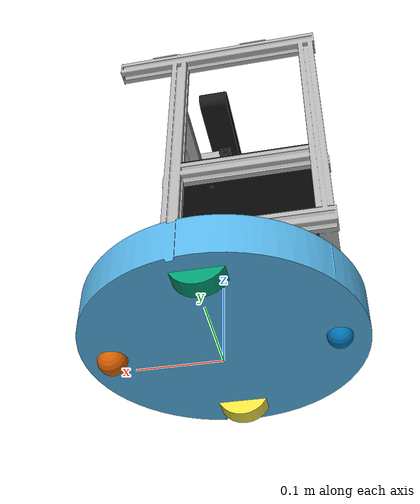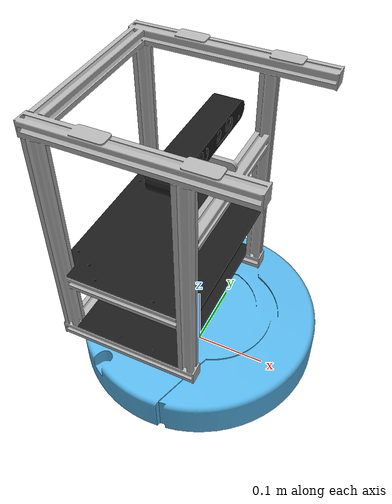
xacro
<?xml version="1.0"?>
<robot name="aicrobo_xi"
  xmlns:xacro="http://ros.org/wiki/xacro">

  <xacro:property name="M_PI" value="3.1415926535897931" />
  <xacro:property name="H_PI" value="1.5707963" />

  <xacro:include filename="$(find aicroboxi_description)/urdf/create_base.urdf.xacro"/>
  <xacro:include filename="$(find aicroboxi_description)/urdf/create_frame.urdf.xacro"/>
  <xacro:include filename="$(find aicroboxi_description)/urdf/xtion_pro.urdf.xacro"/>
</robot>

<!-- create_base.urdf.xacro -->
<robot name="irobot_create"
  xmlns:xacro="http://ros.org/wiki/xacro">

  <link name="base_footprint">
    <visual>
      <origin xyz="0 0 0" rpy="0 0 0" />
      <geometry>
        <box size="0.001 0.001 0.001" />
      </geometry>
      <material name="Green" />
    </visual>

    <collision>
      <origin xyz="0 0 0.017" rpy="0 0 0" />
      <geometry>
        <box size="0.001 0.001 0.001" />
      </geometry>
    </collision>
  </link>

  <joint name="base_footprint_joint" type="fixed">
    <origin xyz="0 0 0.017" rpy="0 0 0" />
    <parent link="base_footprint"/>
    <child link="base_link" />
  </joint>

  <link name="base_link">
    <inertial>
      <mass value="2" />
      <origin xyz="0 0 0.0" />
      <inertia ixx="0.01" ixy="0.0" ixz="0.0"
        iyy="0.01" iyz="0.0" izz="0.5" />
    </inertial>

    <visual>
      <origin xyz=" 0 0 0.0308" rpy="0 0 0" />
      <geometry>
        <mesh filename="package://aicroboxi_description/meshes/create/create_base.dae"/>
      </geometry>
    </visual>

    <collision>
      <origin xyz="0.0 0.0 0.0308" rpy="0 0 0" />
      <geometry>
        <cylinder length="0.0611632" radius="0.016495"/>
      </geometry>
    </collision>
  </link>

  <joint name="base_l_wheel_joint" type="fixed">
    <origin xyz="0 0.13 0.015" rpy="0 0 0"/>
    <parent link="base_link"/>
    <child link="left_wheel_link"/>
    <axis xyz="0 1 0"/>
  </joint>

  <link name="left_wheel_link">
    <inertial>
      <origin xyz="0 0 0"/>
      <mass value="0.01" />
      <inertia ixx="0.001" ixy="0.0" ixz="0.0"
        iyy="0.001" iyz="0.0" izz="0.001" />
    </inertial>

    <visual>
      <origin xyz="0 0 0" rpy="0 ${H_PI} ${H_PI}" />
      <geometry>
        <cylinder radius="0.033" length = "0.023"/>
      </geometry>
    </visual>

    <collision>
      <origin xyz="0 0 0" rpy="0 ${H_PI} ${H_PI}" />
      <geometry>
        <cylinder radius="0.033" length = "0.023"/>
      </geometry>
    </collision>
  </link>

  <joint name="base_r_wheel_joint" type="fixed">
    <origin xyz="0 -0.13 0.015" rpy="0 0 0"/>
    <parent link="base_link"/>
    <child link="right_wheel_link"/>
    <axis xyz="0 1 0"/>
  </joint>

  <link name="right_wheel_link">
    <inertial>
      <origin xyz="0 0 0"/>
      <mass value="0.01" />
      <inertia ixx="0.001" ixy="0.0" ixz="0.0"
        iyy="0.001" iyz="0.0" izz="0.001" />
    </inertial>

    <visual>
      <origin xyz="0 0 0" rpy="0 ${H_PI} ${H_PI}" />
      <geometry>
        <cylinder radius="0.033" length = "0.023"/>
      </geometry>
    </visual>

    <collision>
      <origin xyz="0 0 0" rpy="0 ${H_PI} ${H_PI}" />
      <geometry>
        <cylinder radius="0.033" length = "0.023"/>
      </geometry>
    </collision>
  </link>

  <joint name="rear_castor_joint" type="fixed">
    <origin xyz="-0.13 0 0.0" rpy="0 0 0"/>
    <parent link="base_link"/>
    <child link="rear_wheel_link"/>
    <axis xyz="0 1 0"/>
  </joint>

  <link name="rear_wheel_link">
    <inertial>
      <origin xyz="0 0 0"/>
      <mass value="0.001" />
      <inertia ixx="0.0001" ixy="0.0" ixz="0.0"
        iyy="0.0001" iyz="0.0" izz="0.0001" />
    </inertial>

    <visual>
      <origin xyz="0 0 0" rpy="0 ${H_PI} ${H_PI}"/>
      <geometry>
        <sphere radius="0.015" />
      </geometry>
    </visual>

    <collision>
      <origin xyz="0 0 0" rpy="0 ${H_PI} ${H_PI}" />
      <geometry>
        <sphere radius="0.015" />
      </geometry>
    </collision>
  </link>

  <joint name="front_castor_joint" type="fixed">
    <origin xyz="0.13 0 0.0" rpy="0 0 0"/>
    <parent link="base_link"/>
    <child link="front_wheel_link"/>
    <axis xyz="0 1 0"/>
  </joint>

  <link name="front_wheel_link">
    <inertial>
      <origin xyz="0 0 0" />
      <mass value="0.01" />
      <inertia ixx="0.001" ixy="0.0" ixz="0.0"
        iyy="0.001" iyz="0.0" izz="0.001" />
    </inertial>

    <visual>
      <origin xyz="0 0 0" rpy="0 ${H_PI} ${H_PI}"/>
      <geometry>
        <sphere radius="0.018" />
      </geometry>
    </visual>

    <collision>
      <origin xyz="0 0 0" rpy="0 ${H_PI} ${H_PI}" />
      <geometry>
        <sphere radius="0.018" />
      </geometry>
    </collision>
  </link>
</robot>

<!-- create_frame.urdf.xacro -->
<robot name="aicroboxi_body"
  xmlns:xacro="http://ros.org/wiki/xacro">

  <joint name="base_frame_joint" type="fixed">
    <origin xyz="0 0 0.06116" rpy="0 0 0" />
    <parent link="base_link" />
    <child link="base_frame" />
  </joint>

  <link name="base_frame">
    <visual>
      <origin xyz="0 0 0" rpy="0 0 0" />
      <geometry>
        <mesh filename="package://aicroboxi_description/meshes/create/base_frame.STL" />
      </geometry>
      <material name="al">
        <color rgba="0.7 0.7 0.7 1" />
      </material>
    </visual>

    <collision>
      <origin xyz="0 0 0" rpy="0 0 0" />
      <geometry>
        <mesh filename="package://aicroboxi_description/meshes/create/base_frame.STL" />
      </geometry>
    </collision>
  </link>

  <joint name="plate0_joint" type="fixed">
    <origin xyz="-0.04752 0 0.022" rpy="0 0 0" />
    <parent link="base_frame" />
    <child link="plate0_link" />
  </joint>

  <link name="plate0_link">
    <visual>
      <origin xyz="0 0 0" rpy="${-H_PI} 0 0" />
      <geometry>
        <mesh filename="package://aicroboxi_description/meshes/create/plate0.STL" />
      </geometry>
      <material name="pl">
        <color rgba="0.1 0.1 0.1 1" />
      </material>
    </visual>

    <collision>
      <origin xyz="0 0 0" rpy="${-H_PI} 0 0" />
      <geometry>
        <box size="0.001 0.001 0.001"/>
      </geometry>
    </collision>
  </link>

  <joint name="plate1_joint" type="fixed">
    <origin xyz="-0.04752 0 0.122" rpy="0 0 0" />
    <parent link="base_frame" />
    <child link="plate1_link" />
  </joint>

  <link name="plate1_link">
    <visual>
      <origin xyz="0 0 0" rpy="${-H_PI} 0 0" />
      <geometry>
        <mesh filename="package://aicroboxi_description/meshes/create/plate1.STL" />
      </geometry>
      <material name="pl" />
    </visual>

    <collision>
      <origin xyz="0 0 0" rpy="${-H_PI} 0 0" />
      <geometry>
        <box size="0.001 0.001 0.001"/>
      </geometry>
    </collision>
  </link>

  <joint name="camera_base" type="fixed">
    <origin xyz="0.01616 0 0.27984" rpy="0 0 0"/>
    <parent link="base_frame"/>
    <child link="camera_base" />
  </joint>

  <link name="camera_base">
    <visual>
      <origin xyz="0 0 0" rpy="${H_PI} 0 ${H_PI}" />
      <geometry>
        <mesh filename="package://aicroboxi_description/meshes/xtion_pro_live.STL" />
      </geometry>
      <material name="black">
        <color rgba="0.1 0.1 0.1 1" />
      </material>
    </visual>

    <collision>
      <origin xyz="0 0 0" rpy="${H_PI} 0 ${H_PI}" />
      <geometry>
        <box size="0.001 0.001 0.001"/>
      </geometry>
    </collision>
  </link>

  <joint name="laser_joint" type="fixed">
    <origin xyz="0 0 0.06" rpy="0 0 0"/>
    <parent link="plate0_link"/>
    <child link="laser_link"/>
  </joint>
  <link name="laser_link">
    <inertial>
      <mass value="0.001"/>
      <origin xyz="0 0 0" rpy="0 0 0"/>
      <inertia ixx="0.0001" ixy="0" ixz="0"
                 iyy="0.000001" iyz="0"
                 izz="0.0001"/>
    </inertial>
  </link>
</robot>

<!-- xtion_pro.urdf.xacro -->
<robot name="xtion_pro"
  xmlns:xacro="http://ros.org/wiki/xacro">

  <joint name="camera_link_joint" type="fixed">
    <origin xyz="0 0 0.035" rpy="0 0 0"/>
    <parent link="camera_base"/>
    <child link="camera_link" />
  </joint>

  <link name="camera_link" />

  <joint name="camera_rgb_joint" type="fixed">
    <origin xyz="0.008 0.0185 0" rpy="0 0 0"/>
    <parent link="camera_link"/>
    <child link="camera_rgb_frame" />
  </joint>

  <link name="camera_rgb_frame" />

  <joint name="camera_rgb_optical_joint" type="fixed">
    <origin xyz="0 0 0" rpy="${-H_PI} 0 ${-H_PI}" />
    <parent link="camera_rgb_frame" />
    <child link="camera_rgb_optical_frame" />
  </joint>

  <link name="camera_rgb_optical_frame" />

  <joint name="camera_depth_joint" type="fixed">
    <origin xyz="0.008 0.0445 0" rpy="0 0 0" />
    <parent link="camera_link" />
    <child link="camera_depth_frame" />
  </joint>

  <link name="camera_depth_frame" />

  <joint name="camera_depth_optical_joint" type="fixed">
    <origin xyz="0 0 0" rpy="${-H_PI} 0 ${-H_PI}" />
    <parent link="camera_depth_frame" />
    <child link="camera_depth_optical_frame" />
  </joint>

  <link name="camera_depth_optical_frame" />
</robot>
